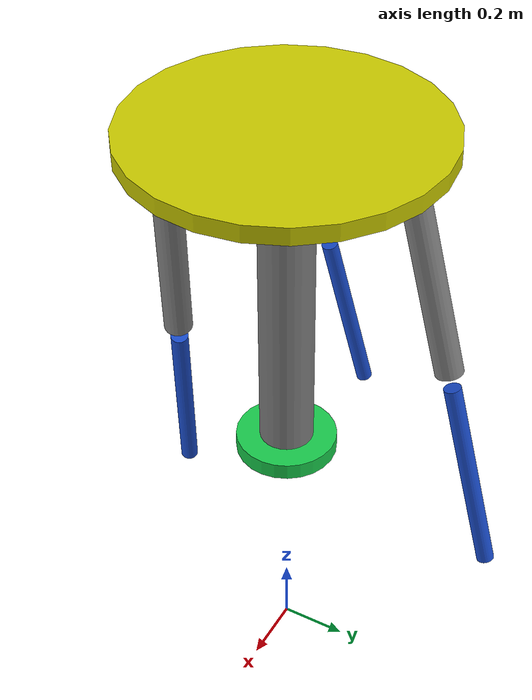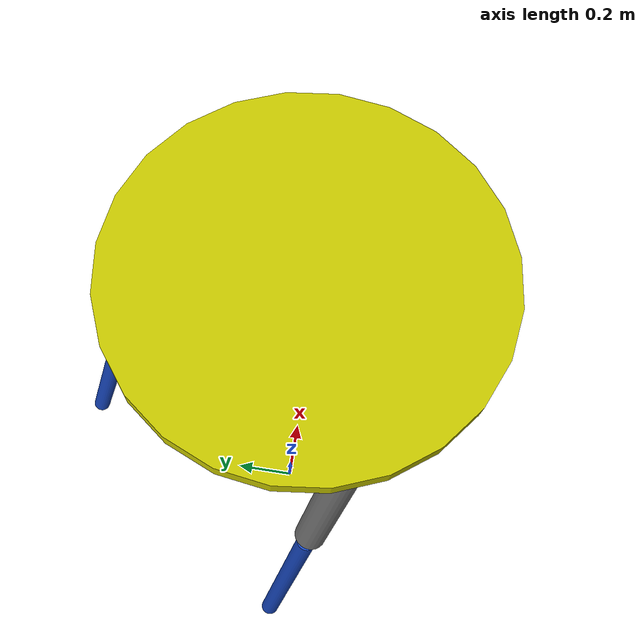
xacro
<?xml version="1.0"?>
<robot xmlns:xacro="http://www.ros.org/wiki/xacro" name="tricept">

  <!-- 1. MATERIALES VISUALES -->
  <material name="yellow"><color rgba="0.8 0.8 0.0 1.0"/></material>
  <material name="grey"><color rgba="0.5 0.5 0.5 1.0"/></material>
  <material name="blue"><color rgba="0.1 0.3 0.8 1.0"/></material>
  <material name="green"><color rgba="0.1 0.8 0.3 1.0"/></material>

  <!-- 2. ANCLAJE FIJO AL MUNDO -->
  <link name="world"/>

  <joint name="world_to_base" type="fixed">
    <parent link="world"/>
    <child link="base_platform"/>
    <origin xyz="0 0 1.8" rpy="0 0 0"/>
  </joint>

  <!-- 3. BASE FIJA (Base Platform) -->
  <link name="base_platform">
    <visual>
      <origin xyz="0 0 0" rpy="0 0 0"/>
      <geometry>
        <cylinder length="0.05" radius="0.45"/>
      </geometry>
      <material name="yellow"/>
    </visual>
    <collision>
      <origin xyz="0 0 0" rpy="0 0 0"/>
      <geometry>
        <cylinder length="0.05" radius="0.45"/>
      </geometry>
    </collision>
    <inertial>
      <mass value="10.0"/>
      <origin xyz="0 0 0" rpy="0 0 0"/>
      <inertia ixx="0.5" ixy="0.0" ixz="0.0" iyy="0.5" iyz="0.0" izz="1.0"/>
    </inertial>
  </link>

  <!-- 4. TUBO CENTRAL TELESCÓPICO -->
  <link name="center_tube">
    <visual>
      <origin xyz="0 0 -0.516" rpy="0 0 0"/>
      <geometry>
        <cylinder length="1.032" radius="0.08"/>
      </geometry>
      <material name="grey"/>
    </visual>
    <collision>
      <origin xyz="0 0 -0.516" rpy="0 0 0"/>
      <geometry>
        <cylinder length="1.032" radius="0.08"/>
      </geometry>
    </collision>
    <inertial>
      <mass value="5.0"/>
      <origin xyz="0 0 -0.516" rpy="0 0 0"/>
      <inertia ixx="0.44" ixy="0.0" ixz="0.0" iyy="0.44" iyz="0.0" izz="0.016"/>
    </inertial>
  </link>

  <joint name="base_to_center_tube" type="prismatic">
    <parent link="base_platform"/>
    <child link="center_tube"/>
    <origin xyz="0 0 0" rpy="0 0 0"/>
    <axis xyz="0 0 -1"/>
    <limit lower="-0.2" upper="0.5" effort="5000.0" velocity="1.0"/>
    <!-- Amortiguación para evitar inestabilidad en Gazebo -->
    <dynamics damping="50.0" friction="10.0"/>
  </joint>

  <!-- 5. PLATAFORMA MÓVIL (Moving Platform) -->
  <link name="moving_platform">
    <visual>
      <origin xyz="0 0 0" rpy="0 0 0"/>
      <geometry>
        <cylinder length="0.05" radius="0.15"/>
      </geometry>
      <material name="green"/>
    </visual>
    <collision>
      <origin xyz="0 0 0" rpy="0 0 0"/>
      <geometry>
        <cylinder length="0.05" radius="0.15"/>
      </geometry>
    </collision>
    <inertial>
      <mass value="3.0"/>
      <origin xyz="0 0 0" rpy="0 0 0"/>
      <inertia ixx="0.017" ixy="0.0" ixz="0.0" iyy="0.017" iyz="0.0" izz="0.033"/>
    </inertial>
  </link>

  <joint name="center_tube_to_platform" type="fixed">
    <parent link="center_tube"/>
    <child link="moving_platform"/>
    <origin xyz="0 0 -1.032" rpy="0 0 0"/>
  </joint>

  <!-- 6. RÓTULAS SUPERIORES -->
  <link name="upper_cardan_1">
    <inertial>
      <mass value="0.1"/>
      <inertia ixx="0.001" ixy="0" ixz="0" iyy="0.001" iyz="0" izz="0.001"/>
    </inertial>
  </link>
  <joint name="base_to_cardan_1" type="fixed">
    <parent link="base_platform"/>
    <child link="upper_cardan_1"/>
    <origin xyz="-0.3000 -0.1732 0.0" rpy="0.0 -0.25 2.617"/>
  </joint>

  <link name="upper_cardan_2">
    <inertial>
      <mass value="0.1"/>
      <inertia ixx="0.001" ixy="0" ixz="0" iyy="0.001" iyz="0" izz="0.001"/>
    </inertial>
  </link>
  <joint name="base_to_cardan_2" type="fixed">
    <parent link="base_platform"/>
    <child link="upper_cardan_2"/>
    <origin xyz="0.0000 0.3464 0.0" rpy="0.25 0.0 0.0"/>
  </joint>

  <link name="upper_cardan_3">
    <inertial>
      <mass value="0.1"/>
      <inertia ixx="0.001" ixy="0" ixz="0" iyy="0.001" iyz="0" izz="0.001"/>
    </inertial>
  </link>
  <joint name="base_to_cardan_3" type="fixed">
    <parent link="base_platform"/>
    <child link="upper_cardan_3"/>
    <origin xyz="0.3000 -0.1732 0.0" rpy="0.0 -0.25 -2.617"/>
  </joint>

  <!-- 7. MACRO PARA ACTUADORES LINEALES -->
  <xacro:macro name="tricept_actuator" params="suffix parent_link">
    <link name="strut_${suffix}_upper">
      <visual>
        <origin xyz="0 0 -0.3" rpy="0 0 0"/>
        <geometry>
          <cylinder length="0.6" radius="0.04"/>
        </geometry>
        <material name="grey"/>
      </visual>
      <collision>
        <origin xyz="0 0 -0.3" rpy="0 0 0"/>
        <geometry>
          <cylinder length="0.6" radius="0.04"/>
        </geometry>
      </collision>
      <inertial>
        <mass value="2.0"/>
        <origin xyz="0 0 -0.3" rpy="0 0 0"/>
        <inertia ixx="0.06" ixy="0.0" ixz="0.0" iyy="0.06" iyz="0.0" izz="0.0016"/>
      </inertial>
    </link>

    <joint name="cardan_to_strut_${suffix}" type="continuous">
      <parent link="${parent_link}"/>
      <child link="strut_${suffix}_upper"/>
      <origin xyz="0 0 0" rpy="0 0 0"/>
      <axis xyz="1 0 0"/>
      <!-- Amortiguación -->
      <dynamics damping="10.0" friction="1.0"/>
    </joint>

    <link name="strut_${suffix}_lower">
      <visual>
        <origin xyz="0 0 -0.3" rpy="0 0 0"/>
        <geometry>
          <cylinder length="0.6" radius="0.025"/>
        </geometry>
        <material name="blue"/>
      </visual>
      <collision>
        <origin xyz="0 0 -0.3" rpy="0 0 0"/>
        <geometry>
          <cylinder length="0.6" radius="0.025"/>
        </geometry>
      </collision>
      <inertial>
        <mass value="1.0"/>
        <origin xyz="0 0 -0.3" rpy="0 0 0"/>
        <inertia ixx="0.03" ixy="0.0" ixz="0.0" iyy="0.03" iyz="0.0" izz="0.0003"/>
      </inertial>
    </link>

    <joint name="piston_joint_${suffix}" type="prismatic">
      <parent link="strut_${suffix}_upper"/>
      <child link="strut_${suffix}_lower"/>
      <origin xyz="0 0 -0.3" rpy="0 0 0"/>
      <axis xyz="0 0 -1"/>
      <limit lower="0.1" upper="0.6" effort="1000.0" velocity="1.0"/>
      <!-- Amortiguación -->
      <dynamics damping="20.0" friction="2.0"/>
    </joint>
  </xacro:macro>

  <xacro:tricept_actuator suffix="1" parent_link="upper_cardan_1"/>
  <xacro:tricept_actuator suffix="2" parent_link="upper_cardan_2"/>
  <xacro:tricept_actuator suffix="3" parent_link="upper_cardan_3"/>

  <!-- 8. CONFIGURACIÓN DE MOTORES (ros2_control para Gazebo Harmonic)       -->
  <ros2_control name="GazeboSystem" type="system">
    <hardware>
      <plugin>gz_ros2_control/GazeboSimSystem</plugin>
    </hardware>

    <joint name="base_to_center_tube">
      <command_interface name="position"/>
      <state_interface name="position"/>
    </joint>
    <joint name="piston_joint_1">
      <command_interface name="position"/>
      <state_interface name="position"/>
    </joint>
    <joint name="piston_joint_2">
      <command_interface name="position"/>
      <state_interface name="position"/>
    </joint>
    <joint name="piston_joint_3">
      <command_interface name="position"/>
      <state_interface name="position"/>
    </joint>
  </ros2_control>

  <gazebo>
    <plugin filename="gz_ros2_control-system" name="gz_ros2_control::GazeboSimROS2ControlPlugin">
      <parameters>$(find tricept_description)/config/controllers.yaml</parameters>
    </plugin>
  </gazebo>
</robot>
